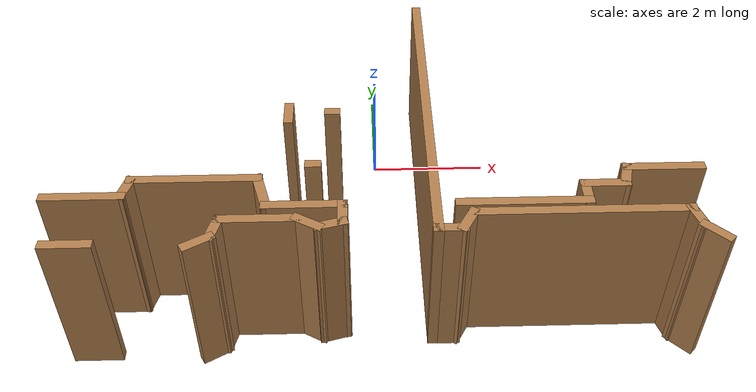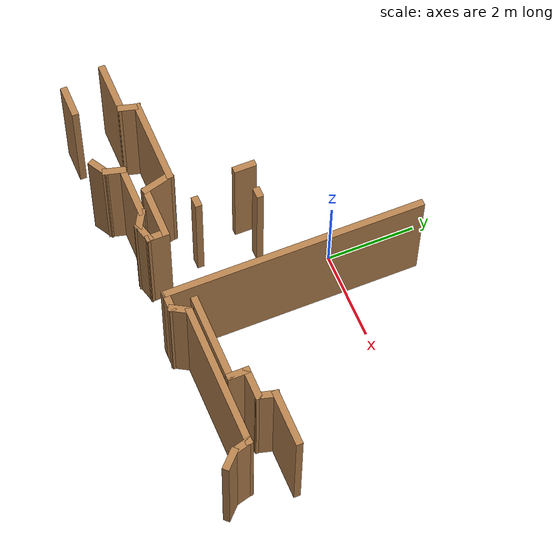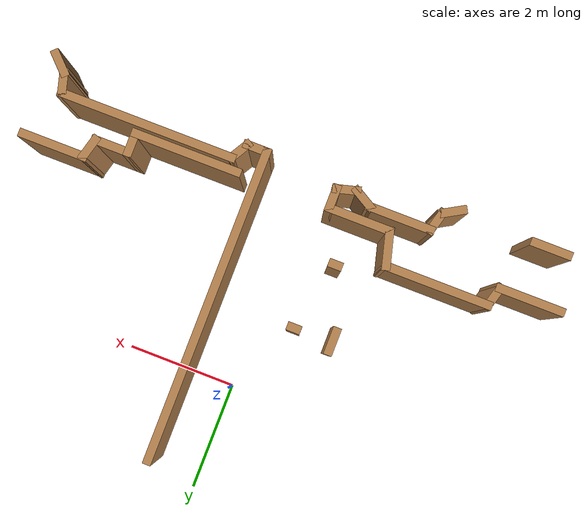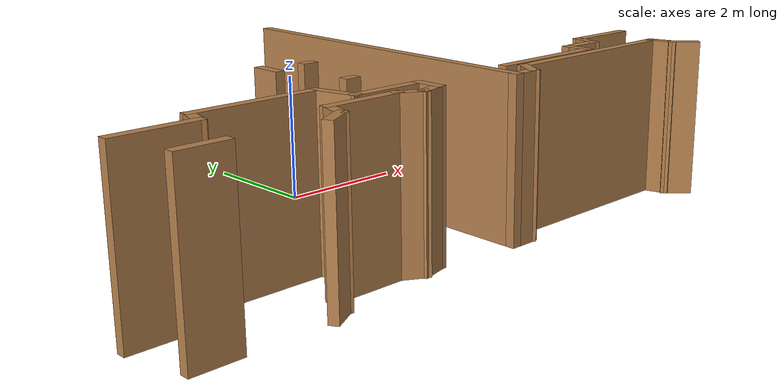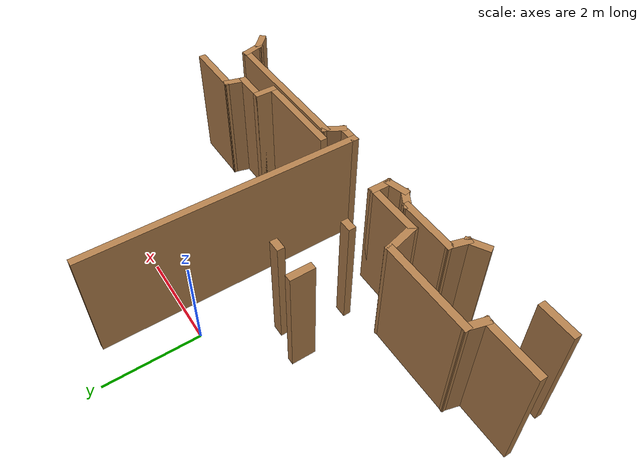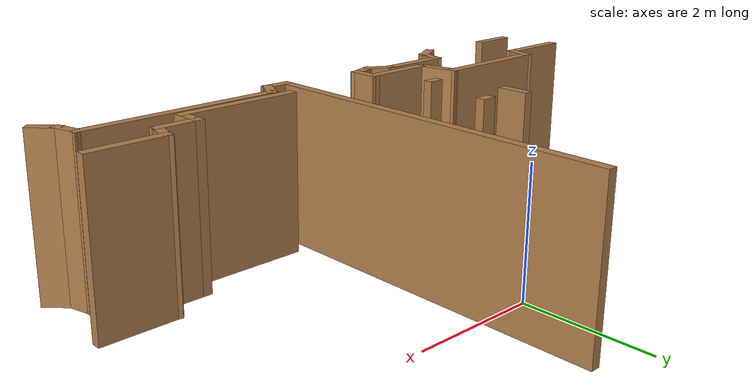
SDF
<sdf version="1.6">
 <model name="map_31">
  <link name="Wall_132">
   <pose>-1.39156 -1.38804 0 0 0 -1.5708</pose>
   <visual name="Wall_132_Visual">
    <pose>0 0 1.25 0 -0 0</pose>
    <geometry><box><size>0.5 0.15 2.5</size></box></geometry>
    <material>
     <script><uri>file://media/materials/scripts/gazebo.material</uri><name>Gazebo/Wood</name></script>
     <ambient>1 1 1 1</ambient>
     <shader type="pixel"/>
    </material>
    <meta><layer>0</layer></meta>
   </visual>
   <collision name="Wall_132_Collision">
    <pose>0 0 1.25 0 -0 0</pose>
    <geometry><box><size>0.5 0.15 2.5</size></box></geometry>
    <surface>
     <friction>
      <ode><mu>1</mu><mu2>1</mu2><fdir1>0 0 0</fdir1><slip1>0</slip1><slip2>0</slip2></ode>
      <torsional>
       <coefficient>1</coefficient>
       <patch_radius>0</patch_radius>
       <surface_radius>0</surface_radius>
       <use_patch_radius>1</use_patch_radius>
       <ode><slip>0</slip></ode>
      </torsional>
     </friction>
     <bounce><restitution_coefficient>0</restitution_coefficient><threshold>1e+06</threshold></bounce>
     <contact>
      <collide_without_contact>0</collide_without_contact>
      <collide_without_contact_bitmask>1</collide_without_contact_bitmask>
      <collide_bitmask>1</collide_bitmask>
      <ode>
       <soft_cfm>0</soft_cfm>
       <soft_erp>0.2</soft_erp>
       <kp>1e+13</kp>
       <kd>1</kd>
       <max_vel>0.01</max_vel>
       <min_depth>0</min_depth>
      </ode>
      <bullet>
       <split_impulse>1</split_impulse>
       <split_impulse_penetration_threshold>-0.01</split_impulse_penetration_threshold>
       <soft_cfm>0</soft_cfm>
       <soft_erp>0.2</soft_erp>
       <kp>1e+13</kp>
       <kd>1</kd>
      </bullet>
     </contact>
    </surface>
   </collision>
  </link>
  <link name="Wall_134">
   <pose>-0.699161 -1.36599 0 0 -0 0</pose>
   <visual name="Wall_134_Visual">
    <pose>0 0 1.25 0 -0 0</pose>
    <geometry><box><size>0.25 0.15 2.5</size></box></geometry>
    <material>
     <script><uri>file://media/materials/scripts/gazebo.material</uri><name>Gazebo/Wood</name></script>
     <ambient>1 1 1 1</ambient>
     <shader type="pixel"/>
    </material>
    <meta><layer>0</layer></meta>
   </visual>
   <collision name="Wall_134_Collision">
    <pose>0 0 1.25 0 -0 0</pose>
    <geometry><box><size>0.25 0.15 2.5</size></box></geometry>
    <surface>
     <friction>
      <ode><mu>1</mu><mu2>1</mu2><fdir1>0 0 0</fdir1><slip1>0</slip1><slip2>0</slip2></ode>
      <torsional>
       <coefficient>1</coefficient>
       <patch_radius>0</patch_radius>
       <surface_radius>0</surface_radius>
       <use_patch_radius>1</use_patch_radius>
       <ode><slip>0</slip></ode>
      </torsional>
     </friction>
     <bounce><restitution_coefficient>0</restitution_coefficient><threshold>1e+06</threshold></bounce>
     <contact>
      <collide_without_contact>0</collide_without_contact>
      <collide_without_contact_bitmask>1</collide_without_contact_bitmask>
      <collide_bitmask>1</collide_bitmask>
      <ode>
       <soft_cfm>0</soft_cfm>
       <soft_erp>0.2</soft_erp>
       <kp>1e+13</kp>
       <kd>1</kd>
       <max_vel>0.01</max_vel>
       <min_depth>0</min_depth>
      </ode>
      <bullet>
       <split_impulse>1</split_impulse>
       <split_impulse_penetration_threshold>-0.01</split_impulse_penetration_threshold>
       <soft_cfm>0</soft_cfm>
       <soft_erp>0.2</soft_erp>
       <kp>1e+13</kp>
       <kd>1</kd>
      </bullet>
     </contact>
    </surface>
   </collision>
  </link>
  <link name="Wall_136">
   <pose>-0.974473 -2.62019 0 0 -0 0</pose>
   <visual name="Wall_136_Visual">
    <pose>0 0 1.25 0 -0 0</pose>
    <geometry><box><size>0.25 0.15 2.5</size></box></geometry>
    <material>
     <script><uri>file://media/materials/scripts/gazebo.material</uri><name>Gazebo/Wood</name></script>
     <ambient>1 1 1 1</ambient>
     <shader type="pixel"/>
    </material>
    <meta><layer>0</layer></meta>
   </visual>
   <collision name="Wall_136_Collision">
    <pose>0 0 1.25 0 -0 0</pose>
    <geometry><box><size>0.25 0.15 2.5</size></box></geometry>
    <surface>
     <friction>
      <ode><mu>1</mu><mu2>1</mu2><fdir1>0 0 0</fdir1><slip1>0</slip1><slip2>0</slip2></ode>
      <torsional>
       <coefficient>1</coefficient>
       <patch_radius>0</patch_radius>
       <surface_radius>0</surface_radius>
       <use_patch_radius>1</use_patch_radius>
       <ode><slip>0</slip></ode>
      </torsional>
     </friction>
     <bounce><restitution_coefficient>0</restitution_coefficient><threshold>1e+06</threshold></bounce>
     <contact>
      <collide_without_contact>0</collide_without_contact>
      <collide_without_contact_bitmask>1</collide_without_contact_bitmask>
      <collide_bitmask>1</collide_bitmask>
      <ode>
       <soft_cfm>0</soft_cfm>
       <soft_erp>0.2</soft_erp>
       <kp>1e+13</kp>
       <kd>1</kd>
       <max_vel>0.01</max_vel>
       <min_depth>0</min_depth>
      </ode>
      <bullet>
       <split_impulse>1</split_impulse>
       <split_impulse_penetration_threshold>-0.01</split_impulse_penetration_threshold>
       <soft_cfm>0</soft_cfm>
       <soft_erp>0.2</soft_erp>
       <kp>1e+13</kp>
       <kd>1</kd>
      </bullet>
     </contact>
    </surface>
   </collision>
  </link>
  <link name="Wall_19">
   <pose>-4.27415 -3.24506 0 0 -0 0</pose>
   <visual name="Wall_19_Visual">
    <pose>0 0 1.25 0 -0 0</pose>
    <geometry><box><size>1.25 0.15 2.5</size></box></geometry>
    <material>
     <script><uri>file://media/materials/scripts/gazebo.material</uri><name>Gazebo/Wood</name></script>
     <ambient>1 1 1 1</ambient>
     <shader type="pixel"/>
    </material>
    <meta><layer>0</layer></meta>
   </visual>
   <collision name="Wall_19_Collision">
    <pose>0 0 1.25 0 -0 0</pose>
    <geometry><box><size>1.25 0.15 2.5</size></box></geometry>
    <surface>
     <friction>
      <ode><mu>1</mu><mu2>1</mu2><fdir1>0 0 0</fdir1><slip1>0</slip1><slip2>0</slip2></ode>
      <torsional>
       <coefficient>1</coefficient>
       <patch_radius>0</patch_radius>
       <surface_radius>0</surface_radius>
       <use_patch_radius>1</use_patch_radius>
       <ode><slip>0</slip></ode>
      </torsional>
     </friction>
     <bounce><restitution_coefficient>0</restitution_coefficient><threshold>1e+06</threshold></bounce>
     <contact>
      <collide_without_contact>0</collide_without_contact>
      <collide_without_contact_bitmask>1</collide_without_contact_bitmask>
      <collide_bitmask>1</collide_bitmask>
      <ode>
       <soft_cfm>0</soft_cfm>
       <soft_erp>0.2</soft_erp>
       <kp>1e+13</kp>
       <kd>1</kd>
       <max_vel>0.01</max_vel>
       <min_depth>0</min_depth>
      </ode>
      <bullet>
       <split_impulse>1</split_impulse>
       <split_impulse_penetration_threshold>-0.01</split_impulse_penetration_threshold>
       <soft_cfm>0</soft_cfm>
       <soft_erp>0.2</soft_erp>
       <kp>1e+13</kp>
       <kd>1</kd>
      </bullet>
     </contact>
    </surface>
   </collision>
  </link>
  <link name="Wall_20">
   <pose>-3.67885 -3.07602 0 0 -0 1.309</pose>
   <visual name="Wall_20_Visual">
    <pose>0 0 1.25 0 -0 0</pose>
    <geometry><box><size>0.5 0.15 2.5</size></box></geometry>
    <material>
     <script><uri>file://media/materials/scripts/gazebo.material</uri><name>Gazebo/Wood</name></script>
     <ambient>1 1 1 1</ambient>
     <shader type="pixel"/>
    </material>
    <meta><layer>0</layer></meta>
   </visual>
   <collision name="Wall_20_Collision">
    <pose>0 0 1.25 0 -0 0</pose>
    <geometry><box><size>0.5 0.15 2.5</size></box></geometry>
    <surface>
     <friction>
      <ode><mu>1</mu><mu2>1</mu2><fdir1>0 0 0</fdir1><slip1>0</slip1><slip2>0</slip2></ode>
      <torsional>
       <coefficient>1</coefficient>
       <patch_radius>0</patch_radius>
       <surface_radius>0</surface_radius>
       <use_patch_radius>1</use_patch_radius>
       <ode><slip>0</slip></ode>
      </torsional>
     </friction>
     <bounce><restitution_coefficient>0</restitution_coefficient><threshold>1e+06</threshold></bounce>
     <contact>
      <collide_without_contact>0</collide_without_contact>
      <collide_without_contact_bitmask>1</collide_without_contact_bitmask>
      <collide_bitmask>1</collide_bitmask>
      <ode>
       <soft_cfm>0</soft_cfm>
       <soft_erp>0.2</soft_erp>
       <kp>1e+13</kp>
       <kd>1</kd>
       <max_vel>0.01</max_vel>
       <min_depth>0</min_depth>
      </ode>
      <bullet>
       <split_impulse>1</split_impulse>
       <split_impulse_penetration_threshold>-0.01</split_impulse_penetration_threshold>
       <soft_cfm>0</soft_cfm>
       <soft_erp>0.2</soft_erp>
       <kp>1e+13</kp>
       <kd>1</kd>
      </bullet>
     </contact>
    </surface>
   </collision>
  </link>
  <link name="Wall_21">
   <pose>-2.70856 -2.90698 0 0 -0 0</pose>
   <visual name="Wall_21_Visual">
    <pose>0 0 1.25 0 -0 0</pose>
    <geometry><box><size>2 0.15 2.5</size></box></geometry>
    <material>
     <script><uri>file://media/materials/scripts/gazebo.material</uri><name>Gazebo/Wood</name></script>
     <ambient>1 1 1 1</ambient>
     <shader type="pixel"/>
    </material>
    <meta><layer>0</layer></meta>
   </visual>
   <collision name="Wall_21_Collision">
    <pose>0 0 1.25 0 -0 0</pose>
    <geometry><box><size>2 0.15 2.5</size></box></geometry>
    <surface>
     <friction>
      <ode><mu>1</mu><mu2>1</mu2><fdir1>0 0 0</fdir1><slip1>0</slip1><slip2>0</slip2></ode>
      <torsional>
       <coefficient>1</coefficient>
       <patch_radius>0</patch_radius>
       <surface_radius>0</surface_radius>
       <use_patch_radius>1</use_patch_radius>
       <ode><slip>0</slip></ode>
      </torsional>
     </friction>
     <bounce><restitution_coefficient>0</restitution_coefficient><threshold>1e+06</threshold></bounce>
     <contact>
      <collide_without_contact>0</collide_without_contact>
      <collide_without_contact_bitmask>1</collide_without_contact_bitmask>
      <collide_bitmask>1</collide_bitmask>
      <ode>
       <soft_cfm>0</soft_cfm>
       <soft_erp>0.2</soft_erp>
       <kp>1e+13</kp>
       <kd>1</kd>
       <max_vel>0.01</max_vel>
       <min_depth>0</min_depth>
      </ode>
      <bullet>
       <split_impulse>1</split_impulse>
       <split_impulse_penetration_threshold>-0.01</split_impulse_penetration_threshold>
       <soft_cfm>0</soft_cfm>
       <soft_erp>0.2</soft_erp>
       <kp>1e+13</kp>
       <kd>1</kd>
      </bullet>
     </contact>
    </surface>
   </collision>
  </link>
  <link name="Wall_22">
   <pose>-1.70591 -3.19676 0 0 0 -1.309</pose>
   <visual name="Wall_22_Visual">
    <pose>0 0 1.25 0 -0 0</pose>
    <geometry><box><size>0.75 0.15 2.5</size></box></geometry>
    <material>
     <script><uri>file://media/materials/scripts/gazebo.material</uri><name>Gazebo/Wood</name></script>
     <ambient>1 1 1 1</ambient>
     <shader type="pixel"/>
    </material>
    <meta><layer>0</layer></meta>
   </visual>
   <collision name="Wall_22_Collision">
    <pose>0 0 1.25 0 -0 0</pose>
    <geometry><box><size>0.75 0.15 2.5</size></box></geometry>
    <surface>
     <friction>
      <ode><mu>1</mu><mu2>1</mu2><fdir1>0 0 0</fdir1><slip1>0</slip1><slip2>0</slip2></ode>
      <torsional>
       <coefficient>1</coefficient>
       <patch_radius>0</patch_radius>
       <surface_radius>0</surface_radius>
       <use_patch_radius>1</use_patch_radius>
       <ode><slip>0</slip></ode>
      </torsional>
     </friction>
     <bounce><restitution_coefficient>0</restitution_coefficient><threshold>1e+06</threshold></bounce>
     <contact>
      <collide_without_contact>0</collide_without_contact>
      <collide_without_contact_bitmask>1</collide_without_contact_bitmask>
      <collide_bitmask>1</collide_bitmask>
      <ode>
       <soft_cfm>0</soft_cfm>
       <soft_erp>0.2</soft_erp>
       <kp>1e+13</kp>
       <kd>1</kd>
       <max_vel>0.01</max_vel>
       <min_depth>0</min_depth>
      </ode>
      <bullet>
       <split_impulse>1</split_impulse>
       <split_impulse_penetration_threshold>-0.01</split_impulse_penetration_threshold>
       <soft_cfm>0</soft_cfm>
       <soft_erp>0.2</soft_erp>
       <kp>1e+13</kp>
       <kd>1</kd>
      </bullet>
     </contact>
    </surface>
   </collision>
  </link>
  <link name="Wall_23">
   <pose>-1.07827 -3.48654 0 0 -0 0</pose>
   <visual name="Wall_23_Visual">
    <pose>0 0 1.25 0 -0 0</pose>
    <geometry><box><size>1.25 0.15 2.5</size></box></geometry>
    <material>
     <script><uri>file://media/materials/scripts/gazebo.material</uri><name>Gazebo/Wood</name></script>
     <ambient>1 1 1 1</ambient>
     <shader type="pixel"/>
    </material>
    <meta><layer>0</layer></meta>
   </visual>
   <collision name="Wall_23_Collision">
    <pose>0 0 1.25 0 -0 0</pose>
    <geometry><box><size>1.25 0.15 2.5</size></box></geometry>
    <surface>
     <friction>
      <ode><mu>1</mu><mu2>1</mu2><fdir1>0 0 0</fdir1><slip1>0</slip1><slip2>0</slip2></ode>
      <torsional>
       <coefficient>1</coefficient>
       <patch_radius>0</patch_radius>
       <surface_radius>0</surface_radius>
       <use_patch_radius>1</use_patch_radius>
       <ode><slip>0</slip></ode>
      </torsional>
     </friction>
     <bounce><restitution_coefficient>0</restitution_coefficient><threshold>1e+06</threshold></bounce>
     <contact>
      <collide_without_contact>0</collide_without_contact>
      <collide_without_contact_bitmask>1</collide_without_contact_bitmask>
      <collide_bitmask>1</collide_bitmask>
      <ode>
       <soft_cfm>0</soft_cfm>
       <soft_erp>0.2</soft_erp>
       <kp>1e+13</kp>
       <kd>1</kd>
       <max_vel>0.01</max_vel>
       <min_depth>0</min_depth>
      </ode>
      <bullet>
       <split_impulse>1</split_impulse>
       <split_impulse_penetration_threshold>-0.01</split_impulse_penetration_threshold>
       <soft_cfm>0</soft_cfm>
       <soft_erp>0.2</soft_erp>
       <kp>1e+13</kp>
       <kd>1</kd>
      </bullet>
     </contact>
    </surface>
   </collision>
  </link>
  <link name="Wall_24">
   <pose>-0.528269 -3.66154 0 0 0 -1.5708</pose>
   <visual name="Wall_24_Visual">
    <pose>0 0 1.25 0 -0 0</pose>
    <geometry><box><size>0.5 0.15 2.5</size></box></geometry>
    <material>
     <script><uri>file://media/materials/scripts/gazebo.material</uri><name>Gazebo/Wood</name></script>
     <ambient>1 1 1 1</ambient>
     <shader type="pixel"/>
    </material>
    <meta><layer>0</layer></meta>
   </visual>
   <collision name="Wall_24_Collision">
    <pose>0 0 1.25 0 -0 0</pose>
    <geometry><box><size>0.5 0.15 2.5</size></box></geometry>
    <surface>
     <friction>
      <ode><mu>1</mu><mu2>1</mu2><fdir1>0 0 0</fdir1><slip1>0</slip1><slip2>0</slip2></ode>
      <torsional>
       <coefficient>1</coefficient>
       <patch_radius>0</patch_radius>
       <surface_radius>0</surface_radius>
       <use_patch_radius>1</use_patch_radius>
       <ode><slip>0</slip></ode>
      </torsional>
     </friction>
     <bounce><restitution_coefficient>0</restitution_coefficient><threshold>1e+06</threshold></bounce>
     <contact>
      <collide_without_contact>0</collide_without_contact>
      <collide_without_contact_bitmask>1</collide_without_contact_bitmask>
      <collide_bitmask>1</collide_bitmask>
      <ode>
       <soft_cfm>0</soft_cfm>
       <soft_erp>0.2</soft_erp>
       <kp>1e+13</kp>
       <kd>1</kd>
       <max_vel>0.01</max_vel>
       <min_depth>0</min_depth>
      </ode>
      <bullet>
       <split_impulse>1</split_impulse>
       <split_impulse_penetration_threshold>-0.01</split_impulse_penetration_threshold>
       <soft_cfm>0</soft_cfm>
       <soft_erp>0.2</soft_erp>
       <kp>1e+13</kp>
       <kd>1</kd>
      </bullet>
     </contact>
    </surface>
   </collision>
  </link>
  <link name="Wall_25">
   <pose>-0.697306 -3.88183 0 0 0 -2.87979</pose>
   <visual name="Wall_25_Visual">
    <pose>0 0 1.25 0 -0 0</pose>
    <geometry><box><size>0.5 0.15 2.5</size></box></geometry>
    <material>
     <script><uri>file://media/materials/scripts/gazebo.material</uri><name>Gazebo/Wood</name></script>
     <ambient>1 1 1 1</ambient>
     <shader type="pixel"/>
    </material>
    <meta><layer>0</layer></meta>
   </visual>
   <collision name="Wall_25_Collision">
    <pose>0 0 1.25 0 -0 0</pose>
    <geometry><box><size>0.5 0.15 2.5</size></box></geometry>
    <surface>
     <friction>
      <ode><mu>1</mu><mu2>1</mu2><fdir1>0 0 0</fdir1><slip1>0</slip1><slip2>0</slip2></ode>
      <torsional>
       <coefficient>1</coefficient>
       <patch_radius>0</patch_radius>
       <surface_radius>0</surface_radius>
       <use_patch_radius>1</use_patch_radius>
       <ode><slip>0</slip></ode>
      </torsional>
     </friction>
     <bounce><restitution_coefficient>0</restitution_coefficient><threshold>1e+06</threshold></bounce>
     <contact>
      <collide_without_contact>0</collide_without_contact>
      <collide_without_contact_bitmask>1</collide_without_contact_bitmask>
      <collide_bitmask>1</collide_bitmask>
      <ode>
       <soft_cfm>0</soft_cfm>
       <soft_erp>0.2</soft_erp>
       <kp>1e+13</kp>
       <kd>1</kd>
       <max_vel>0.01</max_vel>
       <min_depth>0</min_depth>
      </ode>
      <bullet>
       <split_impulse>1</split_impulse>
       <split_impulse_penetration_threshold>-0.01</split_impulse_penetration_threshold>
       <soft_cfm>0</soft_cfm>
       <soft_erp>0.2</soft_erp>
       <kp>1e+13</kp>
       <kd>1</kd>
      </bullet>
     </contact>
    </surface>
   </collision>
  </link>
  <link name="Wall_26">
   <pose>-1.0179 -3.83963 0 0 -0 2.61799</pose>
   <visual name="Wall_26_Visual">
    <pose>0 0 1.25 0 -0 0</pose>
    <geometry><box><size>0.5 0.15 2.5</size></box></geometry>
    <material>
     <script><uri>file://media/materials/scripts/gazebo.material</uri><name>Gazebo/Wood</name></script>
     <ambient>1 1 1 1</ambient>
     <shader type="pixel"/>
    </material>
    <meta><layer>0</layer></meta>
   </visual>
   <collision name="Wall_26_Collision">
    <pose>0 0 1.25 0 -0 0</pose>
    <geometry><box><size>0.5 0.15 2.5</size></box></geometry>
    <surface>
     <friction>
      <ode><mu>1</mu><mu2>1</mu2><fdir1>0 0 0</fdir1><slip1>0</slip1><slip2>0</slip2></ode>
      <torsional>
       <coefficient>1</coefficient>
       <patch_radius>0</patch_radius>
       <surface_radius>0</surface_radius>
       <use_patch_radius>1</use_patch_radius>
       <ode><slip>0</slip></ode>
      </torsional>
     </friction>
     <bounce><restitution_coefficient>0</restitution_coefficient><threshold>1e+06</threshold></bounce>
     <contact>
      <collide_without_contact>0</collide_without_contact>
      <collide_without_contact_bitmask>1</collide_without_contact_bitmask>
      <collide_bitmask>1</collide_bitmask>
      <ode>
       <soft_cfm>0</soft_cfm>
       <soft_erp>0.2</soft_erp>
       <kp>1e+13</kp>
       <kd>1</kd>
       <max_vel>0.01</max_vel>
       <min_depth>0</min_depth>
      </ode>
      <bullet>
       <split_impulse>1</split_impulse>
       <split_impulse_penetration_threshold>-0.01</split_impulse_penetration_threshold>
       <soft_cfm>0</soft_cfm>
       <soft_erp>0.2</soft_erp>
       <kp>1e+13</kp>
       <kd>1</kd>
      </bullet>
     </contact>
    </surface>
   </collision>
  </link>
  <link name="Wall_27">
   <pose>-1.71945 -3.75213 0 0 -0 3.14159</pose>
   <visual name="Wall_27_Visual">
    <pose>0 0 1.25 0 -0 0</pose>
    <geometry><box><size>1.25 0.15 2.5</size></box></geometry>
    <material>
     <script><uri>file://media/materials/scripts/gazebo.material</uri><name>Gazebo/Wood</name></script>
     <ambient>1 1 1 1</ambient>
     <shader type="pixel"/>
    </material>
    <meta><layer>0</layer></meta>
   </visual>
   <collision name="Wall_27_Collision">
    <pose>0 0 1.25 0 -0 0</pose>
    <geometry><box><size>1.25 0.15 2.5</size></box></geometry>
    <surface>
     <friction>
      <ode><mu>1</mu><mu2>1</mu2><fdir1>0 0 0</fdir1><slip1>0</slip1><slip2>0</slip2></ode>
      <torsional>
       <coefficient>1</coefficient>
       <patch_radius>0</patch_radius>
       <surface_radius>0</surface_radius>
       <use_patch_radius>1</use_patch_radius>
       <ode><slip>0</slip></ode>
      </torsional>
     </friction>
     <bounce><restitution_coefficient>0</restitution_coefficient><threshold>1e+06</threshold></bounce>
     <contact>
      <collide_without_contact>0</collide_without_contact>
      <collide_without_contact_bitmask>1</collide_without_contact_bitmask>
      <collide_bitmask>1</collide_bitmask>
      <ode>
       <soft_cfm>0</soft_cfm>
       <soft_erp>0.2</soft_erp>
       <kp>1e+13</kp>
       <kd>1</kd>
       <max_vel>0.01</max_vel>
       <min_depth>0</min_depth>
      </ode>
      <bullet>
       <split_impulse>1</split_impulse>
       <split_impulse_penetration_threshold>-0.01</split_impulse_penetration_threshold>
       <soft_cfm>0</soft_cfm>
       <soft_erp>0.2</soft_erp>
       <kp>1e+13</kp>
       <kd>1</kd>
      </bullet>
     </contact>
    </surface>
   </collision>
  </link>
  <link name="Wall_28">
   <pose>-2.31474 -3.92116 0 0 0 -1.8326</pose>
   <visual name="Wall_28_Visual">
    <pose>0 0 1.25 0 -0 0</pose>
    <geometry><box><size>0.5 0.15 2.5</size></box></geometry>
    <material>
     <script><uri>file://media/materials/scripts/gazebo.material</uri><name>Gazebo/Wood</name></script>
     <ambient>1 1 1 1</ambient>
     <shader type="pixel"/>
    </material>
    <meta><layer>0</layer></meta>
   </visual>
   <collision name="Wall_28_Collision">
    <pose>0 0 1.25 0 -0 0</pose>
    <geometry><box><size>0.5 0.15 2.5</size></box></geometry>
    <surface>
     <friction>
      <ode><mu>1</mu><mu2>1</mu2><fdir1>0 0 0</fdir1><slip1>0</slip1><slip2>0</slip2></ode>
      <torsional>
       <coefficient>1</coefficient>
       <patch_radius>0</patch_radius>
       <surface_radius>0</surface_radius>
       <use_patch_radius>1</use_patch_radius>
       <ode><slip>0</slip></ode>
      </torsional>
     </friction>
     <bounce><restitution_coefficient>0</restitution_coefficient><threshold>1e+06</threshold></bounce>
     <contact>
      <collide_without_contact>0</collide_without_contact>
      <collide_without_contact_bitmask>1</collide_without_contact_bitmask>
      <collide_bitmask>1</collide_bitmask>
      <ode>
       <soft_cfm>0</soft_cfm>
       <soft_erp>0.2</soft_erp>
       <kp>1e+13</kp>
       <kd>1</kd>
       <max_vel>0.01</max_vel>
       <min_depth>0</min_depth>
      </ode>
      <bullet>
       <split_impulse>1</split_impulse>
       <split_impulse_penetration_threshold>-0.01</split_impulse_penetration_threshold>
       <soft_cfm>0</soft_cfm>
       <soft_erp>0.2</soft_erp>
       <kp>1e+13</kp>
       <kd>1</kd>
      </bullet>
     </contact>
    </surface>
   </collision>
  </link>
  <link name="Wall_29">
   <pose>-2.51159 -4.1777 0 0 0 -2.61799</pose>
   <visual name="Wall_29_Visual">
    <pose>0 0 1.25 0 -0 0</pose>
    <geometry><box><size>0.5 0.15 2.5</size></box></geometry>
    <material>
     <script><uri>file://media/materials/scripts/gazebo.material</uri><name>Gazebo/Wood</name></script>
     <ambient>1 1 1 1</ambient>
     <shader type="pixel"/>
    </material>
    <meta><layer>0</layer></meta>
   </visual>
   <collision name="Wall_29_Collision">
    <pose>0 0 1.25 0 -0 0</pose>
    <geometry><box><size>0.5 0.15 2.5</size></box></geometry>
    <surface>
     <friction>
      <ode><mu>1</mu><mu2>1</mu2><fdir1>0 0 0</fdir1><slip1>0</slip1><slip2>0</slip2></ode>
      <torsional>
       <coefficient>1</coefficient>
       <patch_radius>0</patch_radius>
       <surface_radius>0</surface_radius>
       <use_patch_radius>1</use_patch_radius>
       <ode><slip>0</slip></ode>
      </torsional>
     </friction>
     <bounce><restitution_coefficient>0</restitution_coefficient><threshold>1e+06</threshold></bounce>
     <contact>
      <collide_without_contact>0</collide_without_contact>
      <collide_without_contact_bitmask>1</collide_without_contact_bitmask>
      <collide_bitmask>1</collide_bitmask>
      <ode>
       <soft_cfm>0</soft_cfm>
       <soft_erp>0.2</soft_erp>
       <kp>1e+13</kp>
       <kd>1</kd>
       <max_vel>0.01</max_vel>
       <min_depth>0</min_depth>
      </ode>
      <bullet>
       <split_impulse>1</split_impulse>
       <split_impulse_penetration_threshold>-0.01</split_impulse_penetration_threshold>
       <soft_cfm>0</soft_cfm>
       <soft_erp>0.2</soft_erp>
       <kp>1e+13</kp>
       <kd>1</kd>
      </bullet>
     </contact>
    </surface>
   </collision>
  </link>
  <link name="Wall_34">
   <pose>-4.3038 -4.1852 0 0 -0 3.14159</pose>
   <visual name="Wall_34_Visual">
    <pose>0 0 1.25 0 -0 0</pose>
    <geometry><box><size>0.75 0.15 2.5</size></box></geometry>
    <material>
     <script><uri>file://media/materials/scripts/gazebo.material</uri><name>Gazebo/Wood</name></script>
     <ambient>1 1 1 1</ambient>
     <shader type="pixel"/>
    </material>
    <meta><layer>0</layer></meta>
   </visual>
   <collision name="Wall_34_Collision">
    <pose>0 0 1.25 0 -0 0</pose>
    <geometry><box><size>0.75 0.15 2.5</size></box></geometry>
    <surface>
     <friction>
      <ode><mu>1</mu><mu2>1</mu2><fdir1>0 0 0</fdir1><slip1>0</slip1><slip2>0</slip2></ode>
      <torsional>
       <coefficient>1</coefficient>
       <patch_radius>0</patch_radius>
       <surface_radius>0</surface_radius>
       <use_patch_radius>1</use_patch_radius>
       <ode><slip>0</slip></ode>
      </torsional>
     </friction>
     <bounce><restitution_coefficient>0</restitution_coefficient><threshold>1e+06</threshold></bounce>
     <contact>
      <collide_without_contact>0</collide_without_contact>
      <collide_without_contact_bitmask>1</collide_without_contact_bitmask>
      <collide_bitmask>1</collide_bitmask>
      <ode>
       <soft_cfm>0</soft_cfm>
       <soft_erp>0.2</soft_erp>
       <kp>1e+13</kp>
       <kd>1</kd>
       <max_vel>0.01</max_vel>
       <min_depth>0</min_depth>
      </ode>
      <bullet>
       <split_impulse>1</split_impulse>
       <split_impulse_penetration_threshold>-0.01</split_impulse_penetration_threshold>
       <soft_cfm>0</soft_cfm>
       <soft_erp>0.2</soft_erp>
       <kp>1e+13</kp>
       <kd>1</kd>
      </bullet>
     </contact>
    </surface>
   </collision>
  </link>
  <link name="Wall_77">
   <pose>4.64544 -4.15423 0 0 -0 2.35619</pose>
   <visual name="Wall_77_Visual">
    <pose>0 0 1.25 0 -0 0</pose>
    <geometry><box><size>0.5 0.15 2.5</size></box></geometry>
    <material>
     <script><uri>file://media/materials/scripts/gazebo.material</uri><name>Gazebo/Wood</name></script>
     <ambient>1 1 1 1</ambient>
     <shader type="pixel"/>
    </material>
    <meta><layer>0</layer></meta>
   </visual>
   <collision name="Wall_77_Collision">
    <pose>0 0 1.25 0 -0 0</pose>
    <geometry><box><size>0.5 0.15 2.5</size></box></geometry>
    <surface>
     <friction>
      <ode><mu>1</mu><mu2>1</mu2><fdir1>0 0 0</fdir1><slip1>0</slip1><slip2>0</slip2></ode>
      <torsional>
       <coefficient>1</coefficient>
       <patch_radius>0</patch_radius>
       <surface_radius>0</surface_radius>
       <use_patch_radius>1</use_patch_radius>
       <ode><slip>0</slip></ode>
      </torsional>
     </friction>
     <bounce><restitution_coefficient>0</restitution_coefficient><threshold>1e+06</threshold></bounce>
     <contact>
      <collide_without_contact>0</collide_without_contact>
      <collide_without_contact_bitmask>1</collide_without_contact_bitmask>
      <collide_bitmask>1</collide_bitmask>
      <ode>
       <soft_cfm>0</soft_cfm>
       <soft_erp>0.2</soft_erp>
       <kp>1e+13</kp>
       <kd>1</kd>
       <max_vel>0.01</max_vel>
       <min_depth>0</min_depth>
      </ode>
      <bullet>
       <split_impulse>1</split_impulse>
       <split_impulse_penetration_threshold>-0.01</split_impulse_penetration_threshold>
       <soft_cfm>0</soft_cfm>
       <soft_erp>0.2</soft_erp>
       <kp>1e+13</kp>
       <kd>1</kd>
      </bullet>
     </contact>
    </surface>
   </collision>
  </link>
  <link name="Wall_78">
   <pose>4.4764 -3.86144 0 0 -0 1.8326</pose>
   <visual name="Wall_78_Visual">
    <pose>0 0 1.25 0 -0 0</pose>
    <geometry><box><size>0.5 0.15 2.5</size></box></geometry>
    <material>
     <script><uri>file://media/materials/scripts/gazebo.material</uri><name>Gazebo/Wood</name></script>
     <ambient>1 1 1 1</ambient>
     <shader type="pixel"/>
    </material>
    <meta><layer>0</layer></meta>
   </visual>
   <collision name="Wall_78_Collision">
    <pose>0 0 1.25 0 -0 0</pose>
    <geometry><box><size>0.5 0.15 2.5</size></box></geometry>
    <surface>
     <friction>
      <ode><mu>1</mu><mu2>1</mu2><fdir1>0 0 0</fdir1><slip1>0</slip1><slip2>0</slip2></ode>
      <torsional>
       <coefficient>1</coefficient>
       <patch_radius>0</patch_radius>
       <surface_radius>0</surface_radius>
       <use_patch_radius>1</use_patch_radius>
       <ode><slip>0</slip></ode>
      </torsional>
     </friction>
     <bounce><restitution_coefficient>0</restitution_coefficient><threshold>1e+06</threshold></bounce>
     <contact>
      <collide_without_contact>0</collide_without_contact>
      <collide_without_contact_bitmask>1</collide_without_contact_bitmask>
      <collide_bitmask>1</collide_bitmask>
      <ode>
       <soft_cfm>0</soft_cfm>
       <soft_erp>0.2</soft_erp>
       <kp>1e+13</kp>
       <kd>1</kd>
       <max_vel>0.01</max_vel>
       <min_depth>0</min_depth>
      </ode>
      <bullet>
       <split_impulse>1</split_impulse>
       <split_impulse_penetration_threshold>-0.01</split_impulse_penetration_threshold>
       <soft_cfm>0</soft_cfm>
       <soft_erp>0.2</soft_erp>
       <kp>1e+13</kp>
       <kd>1</kd>
      </bullet>
     </contact>
    </surface>
   </collision>
  </link>
  <link name="Wall_79">
   <pose>2.88111 -3.69241 0 0 -0 3.14159</pose>
   <visual name="Wall_79_Visual">
    <pose>0 0 1.25 0 -0 0</pose>
    <geometry><box><size>3.25 0.15 2.5</size></box></geometry>
    <material>
     <script><uri>file://media/materials/scripts/gazebo.material</uri><name>Gazebo/Wood</name></script>
     <ambient>1 1 1 1</ambient>
     <shader type="pixel"/>
    </material>
    <meta><layer>0</layer></meta>
   </visual>
   <collision name="Wall_79_Collision">
    <pose>0 0 1.25 0 -0 0</pose>
    <geometry><box><size>3.25 0.15 2.5</size></box></geometry>
    <surface>
     <friction>
      <ode><mu>1</mu><mu2>1</mu2><fdir1>0 0 0</fdir1><slip1>0</slip1><slip2>0</slip2></ode>
      <torsional>
       <coefficient>1</coefficient>
       <patch_radius>0</patch_radius>
       <surface_radius>0</surface_radius>
       <use_patch_radius>1</use_patch_radius>
       <ode><slip>0</slip></ode>
      </torsional>
     </friction>
     <bounce><restitution_coefficient>0</restitution_coefficient><threshold>1e+06</threshold></bounce>
     <contact>
      <collide_without_contact>0</collide_without_contact>
      <collide_without_contact_bitmask>1</collide_without_contact_bitmask>
      <collide_bitmask>1</collide_bitmask>
      <ode>
       <soft_cfm>0</soft_cfm>
       <soft_erp>0.2</soft_erp>
       <kp>1e+13</kp>
       <kd>1</kd>
       <max_vel>0.01</max_vel>
       <min_depth>0</min_depth>
      </ode>
      <bullet>
       <split_impulse>1</split_impulse>
       <split_impulse_penetration_threshold>-0.01</split_impulse_penetration_threshold>
       <soft_cfm>0</soft_cfm>
       <soft_erp>0.2</soft_erp>
       <kp>1e+13</kp>
       <kd>1</kd>
      </bullet>
     </contact>
    </surface>
   </collision>
  </link>
  <link name="Wall_80">
   <pose>1.24361 -3.84396 0 0 0 -2.0944</pose>
   <visual name="Wall_80_Visual">
    <pose>0 0 1.25 0 -0 0</pose>
    <geometry><box><size>0.5 0.15 2.5</size></box></geometry>
    <material>
     <script><uri>file://media/materials/scripts/gazebo.material</uri><name>Gazebo/Wood</name></script>
     <ambient>1 1 1 1</ambient>
     <shader type="pixel"/>
    </material>
    <meta><layer>0</layer></meta>
   </visual>
   <collision name="Wall_80_Collision">
    <pose>0 0 1.25 0 -0 0</pose>
    <geometry><box><size>0.5 0.15 2.5</size></box></geometry>
    <surface>
     <friction>
      <ode><mu>1</mu><mu2>1</mu2><fdir1>0 0 0</fdir1><slip1>0</slip1><slip2>0</slip2></ode>
      <torsional>
       <coefficient>1</coefficient>
       <patch_radius>0</patch_radius>
       <surface_radius>0</surface_radius>
       <use_patch_radius>1</use_patch_radius>
       <ode><slip>0</slip></ode>
      </torsional>
     </friction>
     <bounce><restitution_coefficient>0</restitution_coefficient><threshold>1e+06</threshold></bounce>
     <contact>
      <collide_without_contact>0</collide_without_contact>
      <collide_without_contact_bitmask>1</collide_without_contact_bitmask>
      <collide_bitmask>1</collide_bitmask>
      <ode>
       <soft_cfm>0</soft_cfm>
       <soft_erp>0.2</soft_erp>
       <kp>1e+13</kp>
       <kd>1</kd>
       <max_vel>0.01</max_vel>
       <min_depth>0</min_depth>
      </ode>
      <bullet>
       <split_impulse>1</split_impulse>
       <split_impulse_penetration_threshold>-0.01</split_impulse_penetration_threshold>
       <soft_cfm>0</soft_cfm>
       <soft_erp>0.2</soft_erp>
       <kp>1e+13</kp>
       <kd>1</kd>
      </bullet>
     </contact>
    </surface>
   </collision>
  </link>
  <link name="Wall_81">
   <pose>0.981109 -3.99552 0 0 -0 3.14159</pose>
   <visual name="Wall_81_Visual">
    <pose>0 0 1.25 0 -0 0</pose>
    <geometry><box><size>0.5 0.15 2.5</size></box></geometry>
    <material>
     <script><uri>file://media/materials/scripts/gazebo.material</uri><name>Gazebo/Wood</name></script>
     <ambient>1 1 1 1</ambient>
     <shader type="pixel"/>
    </material>
    <meta><layer>0</layer></meta>
   </visual>
   <collision name="Wall_81_Collision">
    <pose>0 0 1.25 0 -0 0</pose>
    <geometry><box><size>0.5 0.15 2.5</size></box></geometry>
    <surface>
     <friction>
      <ode><mu>1</mu><mu2>1</mu2><fdir1>0 0 0</fdir1><slip1>0</slip1><slip2>0</slip2></ode>
      <torsional>
       <coefficient>1</coefficient>
       <patch_radius>0</patch_radius>
       <surface_radius>0</surface_radius>
       <use_patch_radius>1</use_patch_radius>
       <ode><slip>0</slip></ode>
      </torsional>
     </friction>
     <bounce><restitution_coefficient>0</restitution_coefficient><threshold>1e+06</threshold></bounce>
     <contact>
      <collide_without_contact>0</collide_without_contact>
      <collide_without_contact_bitmask>1</collide_without_contact_bitmask>
      <collide_bitmask>1</collide_bitmask>
      <ode>
       <soft_cfm>0</soft_cfm>
       <soft_erp>0.2</soft_erp>
       <kp>1e+13</kp>
       <kd>1</kd>
       <max_vel>0.01</max_vel>
       <min_depth>0</min_depth>
      </ode>
      <bullet>
       <split_impulse>1</split_impulse>
       <split_impulse_penetration_threshold>-0.01</split_impulse_penetration_threshold>
       <soft_cfm>0</soft_cfm>
       <soft_erp>0.2</soft_erp>
       <kp>1e+13</kp>
       <kd>1</kd>
      </bullet>
     </contact>
    </surface>
   </collision>
  </link>
  <link name="Wall_82">
   <pose>0.806109 -1.19552 0 0 -0 1.5708</pose>
   <visual name="Wall_82_Visual">
    <pose>0 0 1.25 0 -0 0</pose>
    <geometry><box><size>5.75 0.15 2.5</size></box></geometry>
    <material>
     <script><uri>file://media/materials/scripts/gazebo.material</uri><name>Gazebo/Wood</name></script>
     <ambient>1 1 1 1</ambient>
     <shader type="pixel"/>
    </material>
    <meta><layer>0</layer></meta>
   </visual>
   <collision name="Wall_82_Collision">
    <pose>0 0 1.25 0 -0 0</pose>
    <geometry><box><size>5.75 0.15 2.5</size></box></geometry>
    <surface>
     <friction>
      <ode><mu>1</mu><mu2>1</mu2><fdir1>0 0 0</fdir1><slip1>0</slip1><slip2>0</slip2></ode>
      <torsional>
       <coefficient>1</coefficient>
       <patch_radius>0</patch_radius>
       <surface_radius>0</surface_radius>
       <use_patch_radius>1</use_patch_radius>
       <ode><slip>0</slip></ode>
      </torsional>
     </friction>
     <bounce><restitution_coefficient>0</restitution_coefficient><threshold>1e+06</threshold></bounce>
     <contact>
      <collide_without_contact>0</collide_without_contact>
      <collide_without_contact_bitmask>1</collide_without_contact_bitmask>
      <collide_bitmask>1</collide_bitmask>
      <ode>
       <soft_cfm>0</soft_cfm>
       <soft_erp>0.2</soft_erp>
       <kp>1e+13</kp>
       <kd>1</kd>
       <max_vel>0.01</max_vel>
       <min_depth>0</min_depth>
      </ode>
      <bullet>
       <split_impulse>1</split_impulse>
       <split_impulse_penetration_threshold>-0.01</split_impulse_penetration_threshold>
       <soft_cfm>0</soft_cfm>
       <soft_erp>0.2</soft_erp>
       <kp>1e+13</kp>
       <kd>1</kd>
      </bullet>
     </contact>
    </surface>
   </collision>
  </link>
  <link name="Wall_87">
   <pose>2.08111 -3.49552 0 0 -0 0</pose>
   <visual name="Wall_87_Visual">
    <pose>0 0 1.25 0 -0 0</pose>
    <geometry><box><size>2 0.15 2.5</size></box></geometry>
    <material>
     <script><uri>file://media/materials/scripts/gazebo.material</uri><name>Gazebo/Wood</name></script>
     <ambient>1 1 1 1</ambient>
     <shader type="pixel"/>
    </material>
    <meta><layer>0</layer></meta>
   </visual>
   <collision name="Wall_87_Collision">
    <pose>0 0 1.25 0 -0 0</pose>
    <geometry><box><size>2 0.15 2.5</size></box></geometry>
    <surface>
     <friction>
      <ode><mu>1</mu><mu2>1</mu2><fdir1>0 0 0</fdir1><slip1>0</slip1><slip2>0</slip2></ode>
      <torsional>
       <coefficient>1</coefficient>
       <patch_radius>0</patch_radius>
       <surface_radius>0</surface_radius>
       <use_patch_radius>1</use_patch_radius>
       <ode><slip>0</slip></ode>
      </torsional>
     </friction>
     <bounce><restitution_coefficient>0</restitution_coefficient><threshold>1e+06</threshold></bounce>
     <contact>
      <collide_without_contact>0</collide_without_contact>
      <collide_without_contact_bitmask>1</collide_without_contact_bitmask>
      <collide_bitmask>1</collide_bitmask>
      <ode>
       <soft_cfm>0</soft_cfm>
       <soft_erp>0.2</soft_erp>
       <kp>1e+13</kp>
       <kd>1</kd>
       <max_vel>0.01</max_vel>
       <min_depth>0</min_depth>
      </ode>
      <bullet>
       <split_impulse>1</split_impulse>
       <split_impulse_penetration_threshold>-0.01</split_impulse_penetration_threshold>
       <soft_cfm>0</soft_cfm>
       <soft_erp>0.2</soft_erp>
       <kp>1e+13</kp>
       <kd>1</kd>
      </bullet>
     </contact>
    </surface>
   </collision>
  </link>
  <link name="Wall_88">
   <pose>3.00611 -3.32052 0 0 -0 1.5708</pose>
   <visual name="Wall_88_Visual">
    <pose>0 0 1.25 0 -0 0</pose>
    <geometry><box><size>0.5 0.15 2.5</size></box></geometry>
    <material>
     <script><uri>file://media/materials/scripts/gazebo.material</uri><name>Gazebo/Wood</name></script>
     <ambient>1 1 1 1</ambient>
     <shader type="pixel"/>
    </material>
    <meta><layer>0</layer></meta>
   </visual>
   <collision name="Wall_88_Collision">
    <pose>0 0 1.25 0 -0 0</pose>
    <geometry><box><size>0.5 0.15 2.5</size></box></geometry>
    <surface>
     <friction>
      <ode><mu>1</mu><mu2>1</mu2><fdir1>0 0 0</fdir1><slip1>0</slip1><slip2>0</slip2></ode>
      <torsional>
       <coefficient>1</coefficient>
       <patch_radius>0</patch_radius>
       <surface_radius>0</surface_radius>
       <use_patch_radius>1</use_patch_radius>
       <ode><slip>0</slip></ode>
      </torsional>
     </friction>
     <bounce><restitution_coefficient>0</restitution_coefficient><threshold>1e+06</threshold></bounce>
     <contact>
      <collide_without_contact>0</collide_without_contact>
      <collide_without_contact_bitmask>1</collide_without_contact_bitmask>
      <collide_bitmask>1</collide_bitmask>
      <ode>
       <soft_cfm>0</soft_cfm>
       <soft_erp>0.2</soft_erp>
       <kp>1e+13</kp>
       <kd>1</kd>
       <max_vel>0.01</max_vel>
       <min_depth>0</min_depth>
      </ode>
      <bullet>
       <split_impulse>1</split_impulse>
       <split_impulse_penetration_threshold>-0.01</split_impulse_penetration_threshold>
       <soft_cfm>0</soft_cfm>
       <soft_erp>0.2</soft_erp>
       <kp>1e+13</kp>
       <kd>1</kd>
      </bullet>
     </contact>
    </surface>
   </collision>
  </link>
  <link name="Wall_89">
   <pose>3.30611 -3.14552 0 0 -0 0</pose>
   <visual name="Wall_89_Visual">
    <pose>0 0 1.25 0 -0 0</pose>
    <geometry><box><size>0.75 0.15 2.5</size></box></geometry>
    <material>
     <script><uri>file://media/materials/scripts/gazebo.material</uri><name>Gazebo/Wood</name></script>
     <ambient>1 1 1 1</ambient>
     <shader type="pixel"/>
    </material>
    <meta><layer>0</layer></meta>
   </visual>
   <collision name="Wall_89_Collision">
    <pose>0 0 1.25 0 -0 0</pose>
    <geometry><box><size>0.75 0.15 2.5</size></box></geometry>
    <surface>
     <friction>
      <ode><mu>1</mu><mu2>1</mu2><fdir1>0 0 0</fdir1><slip1>0</slip1><slip2>0</slip2></ode>
      <torsional>
       <coefficient>1</coefficient>
       <patch_radius>0</patch_radius>
       <surface_radius>0</surface_radius>
       <use_patch_radius>1</use_patch_radius>
       <ode><slip>0</slip></ode>
      </torsional>
     </friction>
     <bounce><restitution_coefficient>0</restitution_coefficient><threshold>1e+06</threshold></bounce>
     <contact>
      <collide_without_contact>0</collide_without_contact>
      <collide_without_contact_bitmask>1</collide_without_contact_bitmask>
      <collide_bitmask>1</collide_bitmask>
      <ode>
       <soft_cfm>0</soft_cfm>
       <soft_erp>0.2</soft_erp>
       <kp>1e+13</kp>
       <kd>1</kd>
       <max_vel>0.01</max_vel>
       <min_depth>0</min_depth>
      </ode>
      <bullet>
       <split_impulse>1</split_impulse>
       <split_impulse_penetration_threshold>-0.01</split_impulse_penetration_threshold>
       <soft_cfm>0</soft_cfm>
       <soft_erp>0.2</soft_erp>
       <kp>1e+13</kp>
       <kd>1</kd>
      </bullet>
     </contact>
    </surface>
   </collision>
  </link>
  <link name="Wall_90">
   <pose>3.6514 -2.97648 0 0 -0 1.309</pose>
   <visual name="Wall_90_Visual">
    <pose>0 0 1.25 0 -0 0</pose>
    <geometry><box><size>0.5 0.15 2.5</size></box></geometry>
    <material>
     <script><uri>file://media/materials/scripts/gazebo.material</uri><name>Gazebo/Wood</name></script>
     <ambient>1 1 1 1</ambient>
     <shader type="pixel"/>
    </material>
    <meta><layer>0</layer></meta>
   </visual>
   <collision name="Wall_90_Collision">
    <pose>0 0 1.25 0 -0 0</pose>
    <geometry><box><size>0.5 0.15 2.5</size></box></geometry>
    <surface>
     <friction>
      <ode><mu>1</mu><mu2>1</mu2><fdir1>0 0 0</fdir1><slip1>0</slip1><slip2>0</slip2></ode>
      <torsional>
       <coefficient>1</coefficient>
       <patch_radius>0</patch_radius>
       <surface_radius>0</surface_radius>
       <use_patch_radius>1</use_patch_radius>
       <ode><slip>0</slip></ode>
      </torsional>
     </friction>
     <bounce><restitution_coefficient>0</restitution_coefficient><threshold>1e+06</threshold></bounce>
     <contact>
      <collide_without_contact>0</collide_without_contact>
      <collide_without_contact_bitmask>1</collide_without_contact_bitmask>
      <collide_bitmask>1</collide_bitmask>
      <ode>
       <soft_cfm>0</soft_cfm>
       <soft_erp>0.2</soft_erp>
       <kp>1e+13</kp>
       <kd>1</kd>
       <max_vel>0.01</max_vel>
       <min_depth>0</min_depth>
      </ode>
      <bullet>
       <split_impulse>1</split_impulse>
       <split_impulse_penetration_threshold>-0.01</split_impulse_penetration_threshold>
       <soft_cfm>0</soft_cfm>
       <soft_erp>0.2</soft_erp>
       <kp>1e+13</kp>
       <kd>1</kd>
      </bullet>
     </contact>
    </surface>
   </collision>
  </link>
  <link name="Wall_91">
   <pose>4.24669 -2.80744 0 0 -0 0</pose>
   <visual name="Wall_91_Visual">
    <pose>0 0 1.25 0 -0 0</pose>
    <geometry><box><size>1.25 0.15 2.5</size></box></geometry>
    <material>
     <script><uri>file://media/materials/scripts/gazebo.material</uri><name>Gazebo/Wood</name></script>
     <ambient>1 1 1 1</ambient>
     <shader type="pixel"/>
    </material>
    <meta><layer>0</layer></meta>
   </visual>
   <collision name="Wall_91_Collision">
    <pose>0 0 1.25 0 -0 0</pose>
    <geometry><box><size>1.25 0.15 2.5</size></box></geometry>
    <surface>
     <friction>
      <ode><mu>1</mu><mu2>1</mu2><fdir1>0 0 0</fdir1><slip1>0</slip1><slip2>0</slip2></ode>
      <torsional>
       <coefficient>1</coefficient>
       <patch_radius>0</patch_radius>
       <surface_radius>0</surface_radius>
       <use_patch_radius>1</use_patch_radius>
       <ode><slip>0</slip></ode>
      </torsional>
     </friction>
     <bounce><restitution_coefficient>0</restitution_coefficient><threshold>1e+06</threshold></bounce>
     <contact>
      <collide_without_contact>0</collide_without_contact>
      <collide_without_contact_bitmask>1</collide_without_contact_bitmask>
      <collide_bitmask>1</collide_bitmask>
      <ode>
       <soft_cfm>0</soft_cfm>
       <soft_erp>0.2</soft_erp>
       <kp>1e+13</kp>
       <kd>1</kd>
       <max_vel>0.01</max_vel>
       <min_depth>0</min_depth>
      </ode>
      <bullet>
       <split_impulse>1</split_impulse>
       <split_impulse_penetration_threshold>-0.01</split_impulse_penetration_threshold>
       <soft_cfm>0</soft_cfm>
       <soft_erp>0.2</soft_erp>
       <kp>1e+13</kp>
       <kd>1</kd>
      </bullet>
     </contact>
    </surface>
   </collision>
  </link>
  <static>1</static>
 </model>
</sdf>
